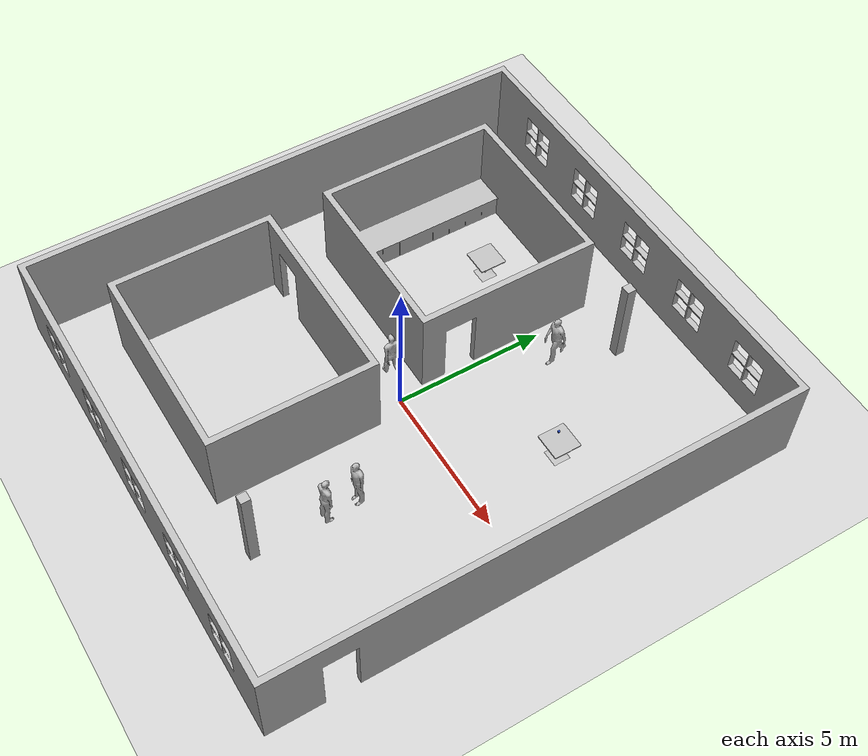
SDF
<sdf version="1.4">
 <world name="default">
  <model name="ground_plane">
   <static>1</static>
   <link name="link">
    <collision name="collision">
     <geometry><plane><normal>0 0 1</normal><size>100 100</size></plane></geometry>
     <surface><friction><ode><mu>100</mu><mu2>50</mu2></ode></friction></surface>
    </collision>
    <visual name="visual">
     <cast_shadows>0</cast_shadows>
     <geometry><plane><normal>0 0 1</normal><size>100 100</size></plane></geometry>
     <material>
      <script><uri>file://media/materials/scripts/gazebo.material</uri><name>Gazebo/Grey</name></script>
     </material>
    </visual>
    <velocity_decay><linear>0</linear><angular>0</angular></velocity_decay>
   </link>
  </model>
  <light name="sun" type="directional">
   <pose>0 0 10 0 -0 0</pose>
   <diffuse>0.8 0.8 0.8 1</diffuse>
   <specular>0.2 0.2 0.2 1</specular>
   <attenuation>
    <range>1000</range>
    <constant>0.9</constant>
    <linear>0.01</linear>
    <quadratic>0.001</quadratic>
   </attenuation>
   <direction>-0.5 0.1 -0.9</direction>
  </light>
  <model name="test_zone">
   <link name="link">
    <inertial>
     <mass>15</mass>
     <inertia><ixx>0</ixx><ixy>0</ixy><ixz>0</ixz><iyy>0</iyy><iyz>0</iyz><izz>0.1</izz></inertia>
    </inertial>
    <collision name="collision">
     <pose>-8.12 8.8 0 1.57 -0 0</pose>
     <geometry><mesh><uri>model://test_zone/meshes/building.dae</uri></mesh></geometry>
    </collision>
    <visual name="visual">
     <pose>-8.12 8.8 0 1.57 -0 0</pose>
     <geometry><mesh><uri>model://test_zone/meshes/building.dae</uri></mesh></geometry>
    </visual>
    <velocity_decay><linear>0</linear><angular>0</angular></velocity_decay>
   </link>
   <static>1</static>
  </model>
  <model name="table1">
   <static>1</static>
   <link name="link">
    <collision name="surface">
     <pose>0 0 0.755 0 -0 0</pose>
     <geometry><box><size>0.913 0.913 0.04</size></box></geometry>
    </collision>
    <collision name="column">
     <pose>0 0 0.37 0 -0 0</pose>
     <geometry><box><size>0.042 0.042 0.74</size></box></geometry>
    </collision>
    <collision name="base">
     <pose>0 0 0.02 0 -0 0</pose>
     <geometry><box><size>0.56 0.56 0.04</size></box></geometry>
    </collision>
    <visual name="visual">
     <geometry><mesh><uri>model://cafe_table/meshes/cafe_table.dae</uri></mesh></geometry>
    </visual>
    <velocity_decay><linear>0</linear><angular>0</angular></velocity_decay>
   </link>
   <pose>4.05 3 0 0 -0 1.57</pose>
  </model>
  <model name="table2">
   <static>1</static>
   <link name="link">
    <collision name="surface">
     <pose>0 0 0.755 0 -0 0</pose>
     <geometry><box><size>0.913 0.913 0.04</size></box></geometry>
    </collision>
    <collision name="column">
     <pose>0 0 0.37 0 -0 0</pose>
     <geometry><box><size>0.042 0.042 0.74</size></box></geometry>
    </collision>
    <collision name="base">
     <pose>0 0 0.02 0 -0 0</pose>
     <geometry><box><size>0.56 0.56 0.04</size></box></geometry>
    </collision>
    <visual name="visual">
     <geometry><mesh><uri>model://cafe_table/meshes/cafe_table.dae</uri></mesh></geometry>
    </visual>
    <velocity_decay><linear>0</linear><angular>0</angular></velocity_decay>
   </link>
   <pose>-3 5 0 0 -0 1.57</pose>
  </model>
  <model name="demo_cube">
   <static>0</static>
   <link name="link">
    <inertial>
     <mass>0.25</mass>
     <inertia><ixx>0.001</ixx><ixy>0</ixy><ixz>0</ixz><iyy>0.001</iyy><iyz>0</iyz><izz>0.001</izz></inertia>
    </inertial>
    <collision name="collision">
     <geometry><box><size>0.06 0.06 0.06</size></box></geometry>
     <surface>
      <friction><ode><mu>30</mu><mu2>30</mu2></ode></friction>
      <contact><ode><kp>1e+06</kp><kd>100</kd><max_vel>1</max_vel><min_depth>0.002</min_depth></ode></contact>
     </surface>
    </collision>
    <visual name="visual">
     <geometry><box><size>0.06 0.06 0.06</size></box></geometry>
     <material>
      <script><uri>file://media/materials/scripts/gazebo.material</uri><name>Gazebo/Blue</name></script>
     </material>
    </visual>
    <velocity_decay><linear>0</linear><angular>0</angular></velocity_decay>
   </link>
   <pose>3.8 3.15 0.802999 0 -0 0</pose>
  </model>
  <physics type="ode">
   <max_step_size>0.001</max_step_size>
   <real_time_factor>1</real_time_factor>
   <real_time_update_rate>1000</real_time_update_rate>
   <gravity>0 0 -9.8</gravity>
  </physics>
  <scene><ambient>0.4 0.4 0.4 1</ambient><background>0.7 0.7 0.7 1</background><shadows>1</shadows></scene>
  <spherical_coordinates>
   <surface_model>EARTH_WGS84</surface_model>
   <latitude_deg>0</latitude_deg>
   <longitude_deg>0</longitude_deg>
   <elevation>0</elevation>
   <heading_deg>0</heading_deg>
  </spherical_coordinates>
  <model name="person_walking">
   <link name="link">
    <inertial>
     <pose>0 0 0.95 0 -0 0</pose>
     <mass>80</mass>
     <inertia><ixx>27.82</ixx><ixy>0</ixy><ixz>0</ixz><iyy>24.88</iyy><iyz>0</iyz><izz>4.57</izz></inertia>
    </inertial>
    <collision name="bottom">
     <pose>0 0 0.01 0 -0 0</pose>
     <geometry><box><size>0.35 0.75 0.02</size></box></geometry>
    </collision>
    <collision name="person">
     <pose>0 0 -0.02 0 -0 0</pose>
     <geometry><mesh><uri>model://person_walking/meshes/walking.dae</uri></mesh></geometry>
    </collision>
    <visual name="visual">
     <pose>0 0 -0.02 0 -0 0</pose>
     <geometry><mesh><uri>model://person_walking/meshes/walking.dae</uri></mesh></geometry>
    </visual>
    <velocity_decay><linear>0</linear><angular>0</angular></velocity_decay>
   </link>
   <pose>1 5 -1e-06 -2e-06 1e-06 1.1e-05</pose>
   <static>0</static>
  </model>
  <model name="person_walking_0">
   <link name="link">
    <inertial>
     <pose>0 0 0.95 0 -0 0</pose>
     <mass>80</mass>
     <inertia><ixx>27.82</ixx><ixy>0</ixy><ixz>0</ixz><iyy>24.88</iyy><iyz>0</iyz><izz>4.57</izz></inertia>
    </inertial>
    <collision name="bottom">
     <pose>0 0 0.01 0 -0 0</pose>
     <geometry><box><size>0.35 0.75 0.02</size></box></geometry>
    </collision>
    <collision name="person">
     <pose>0 0 -0.02 0 -0 0</pose>
     <geometry><mesh><uri>model://person_walking/meshes/walking.dae</uri></mesh></geometry>
    </collision>
    <visual name="visual">
     <pose>0 0 -0.02 0 -0 0</pose>
     <geometry><mesh><uri>model://person_walking/meshes/walking.dae</uri></mesh></geometry>
    </visual>
    <velocity_decay><linear>0</linear><angular>0</angular></velocity_decay>
   </link>
   <pose>-1.00008 0.29297 -1e-06 -2e-06 -6.35275e-22 -1.60084</pose>
   <static>0</static>
  </model>
  <model name="person_standing">
   <link name="link">
    <inertial>
     <pose>0 -0.1 0.95 0 -0 0</pose>
     <mass>80</mass>
     <inertia><ixx>24.88</ixx><ixy>0</ixy><ixz>0</ixz><iyy>25.73</iyy><iyz>0</iyz><izz>2.48</izz></inertia>
    </inertial>
    <collision name="bottom">
     <pose>0 -0.1 0.01 0 -0 0</pose>
     <geometry><box><size>0.5 0.35 0.02</size></box></geometry>
    </collision>
    <collision name="person">
     <pose>0 0 0.02 0.04 -0 0</pose>
     <geometry><mesh><uri>model://person_standing/meshes/standing.dae</uri></mesh></geometry>
    </collision>
    <visual name="visual">
     <pose>0 0 0.02 0.04 -0 0</pose>
     <geometry><mesh><uri>model://person_standing/meshes/standing.dae</uri></mesh></geometry>
    </visual>
    <velocity_decay><linear>0</linear><angular>0</angular></velocity_decay>
   </link>
   <pose>2.37749 -2.76506 0 0 -1e-06 7.8e-05</pose>
   <static>0</static>
  </model>
  <model name="person_standing_0">
   <link name="link">
    <inertial>
     <pose>0 -0.1 0.95 0 -0 0</pose>
     <mass>80</mass>
     <inertia><ixx>24.88</ixx><ixy>0</ixy><ixz>0</ixz><iyy>25.73</iyy><iyz>0</iyz><izz>2.48</izz></inertia>
    </inertial>
    <collision name="bottom">
     <pose>0 -0.1 0.01 0 -0 0</pose>
     <geometry><box><size>0.5 0.35 0.02</size></box></geometry>
    </collision>
    <collision name="person">
     <pose>0 0 0.02 0.04 -0 0</pose>
     <geometry><mesh><uri>model://person_standing/meshes/standing.dae</uri></mesh></geometry>
    </collision>
    <visual name="visual">
     <pose>0 0 0.02 0.04 -0 0</pose>
     <geometry><mesh><uri>model://person_standing/meshes/standing.dae</uri></mesh></geometry>
    </visual>
    <velocity_decay><linear>0</linear><angular>0</angular></velocity_decay>
   </link>
   <pose>2.45254 -4 -1e-06 -1e-06 1e-06 -3.10981</pose>
   <static>0</static>
  </model>
 </world>
</sdf>
